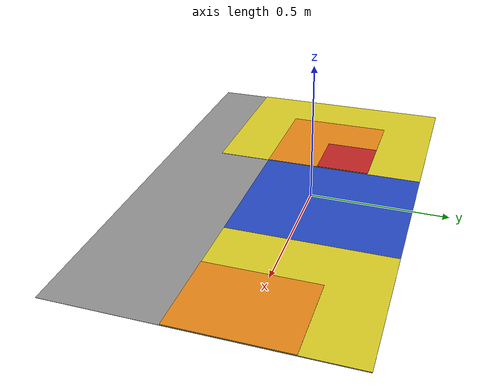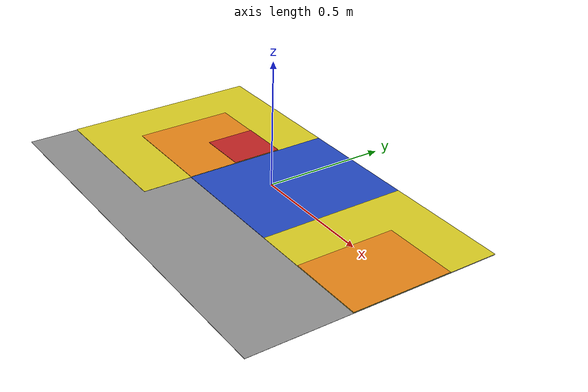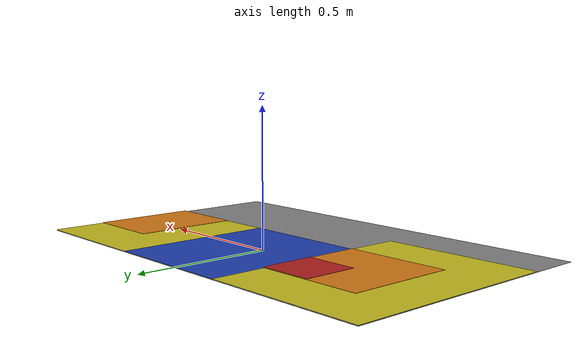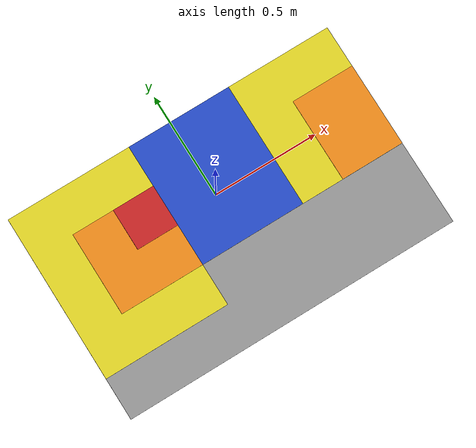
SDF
<?xml version='1.0'?>
<sdf version='1.6'>
  <model name='score_mattress_0'>
    <link name='link_0'>
      <pose frame=''>-0.007143 -0.128571 0.002 0 -0 0</pose>
      <inertial>
        <mass>1</mass>
        <inertia>
          <ixx>0.166667</ixx>
          <ixy>0</ixy>
          <ixz>0</ixz>
          <iyy>0.166667</iyy>
          <iyz>0</iyz>
          <izz>0.166667</izz>
        </inertia>
        <pose frame=''>0 0 0 0 -0 0</pose>
      </inertial>
      <self_collide>0</self_collide>
      <kinematic>0</kinematic>
      <sensor name='contact1' type='contact'>
        <always_on>1</always_on>
        <update_rate>10</update_rate>
        <contact>
          <collision>collision</collision>
          <topic>__default_topic__</topic>
        </contact>
        <plugin name='bumper1' filename='libgazebo_ros_bumper.so'>
          <alwaysOn>true</alwaysOn>
          <updateRate>0.0</updateRate>
          <bumperTopicName>/mattress/score0</bumperTopicName>
          <frameName>bumper1</frameName>
        </plugin>
      </sensor>
      <gravity>1</gravity>
      <visual name='visual'>
        <pose frame=''>0 0 0 0 -0 0</pose>
        <geometry>
          <box>
            <size>1.6 1 0.001</size>
          </box>
        </geometry>
        <material>
          <script>
            <uri>file://media/materials/scripts/gazebo.material</uri>
            <name>Gazebo/Grey</name>
          </script>
          <ambient>0.3 0.3 0.3 1</ambient>
          <diffuse>0.7 0.7 0.7 1</diffuse>
          <specular>0.01 0.01 0.01 1</specular>
          <emissive>0 0 0 1</emissive>
          <shader type='vertex'>
            <normal_map>__default__</normal_map>
          </shader>
        </material>
        <transparency>0</transparency>
        <cast_shadows>1</cast_shadows>
      </visual>
      <collision name='collision'>
        <laser_retro>0</laser_retro>
        <max_contacts>10</max_contacts>
        <pose frame=''>0 0 0 0 -0 0</pose>
        <geometry>
          <box>
            <size>1.6 1 0.001</size>
          </box>
        </geometry>
        <surface>
          <friction>
            <ode>
              <mu>1</mu>
              <mu2>1</mu2>
              <fdir1>0 0 0</fdir1>
              <slip1>0</slip1>
              <slip2>0</slip2>
            </ode>
            <torsional>
              <coefficient>1</coefficient>
              <patch_radius>0</patch_radius>
              <surface_radius>0</surface_radius>
              <use_patch_radius>1</use_patch_radius>
              <ode>
                <slip>0</slip>
              </ode>
            </torsional>
          </friction>
          <bounce>
            <restitution_coefficient>0</restitution_coefficient>
            <threshold>1e+06</threshold>
          </bounce>
          <contact>
            <collide_without_contact>0</collide_without_contact>
            <collide_without_contact_bitmask>1</collide_without_contact_bitmask>
            <collide_bitmask>1</collide_bitmask>
            <ode>
              <soft_cfm>0</soft_cfm>
              <soft_erp>0.2</soft_erp>
              <kp>1e+13</kp>
              <kd>1</kd>
              <max_vel>0.01</max_vel>
              <min_depth>0</min_depth>
            </ode>
            <bullet>
              <split_impulse>1</split_impulse>
              <split_impulse_penetration_threshold>-0.01</split_impulse_penetration_threshold>
              <soft_cfm>0</soft_cfm>
              <soft_erp>0.2</soft_erp>
              <kp>1e+13</kp>
              <kd>1</kd>
            </bullet>
          </contact>
        </surface>
      </collision>
    </link>
    <link name='link_0_clone'>
      <pose frame=''>0.542857 0.071429 0.004 0 -0 0</pose>
      <inertial>
        <mass>1</mass>
        <inertia>
          <ixx>0.166667</ixx>
          <ixy>0</ixy>
          <ixz>0</ixz>
          <iyy>0.166667</iyy>
          <iyz>0</iyz>
          <izz>0.166667</izz>
        </inertia>
        <pose frame=''>0 0 0 0 -0 0</pose>
      </inertial>
      <self_collide>0</self_collide>
      <kinematic>0</kinematic>
      <sensor name='contact2' type='contact'>
        <always_on>1</always_on>
        <update_rate>10</update_rate>
        <contact>
          <collision>collision</collision>
          <topic>__default_topic__</topic>
        </contact>
        <plugin name='bumper2' filename='libgazebo_ros_bumper.so'>
          <alwaysOn>true</alwaysOn>
          <updateRate>0.0</updateRate>
          <bumperTopicName>/mattress/score5</bumperTopicName>
          <frameName>bumper2</frameName>
        </plugin>
      </sensor>
      <gravity>1</gravity>
      <visual name='visual'>
        <pose frame=''>0 0 0 0 -0 0</pose>
        <geometry>
          <box>
            <size>0.5 0.6 0.001</size>
          </box>
        </geometry>
        <material>
          <script>
            <uri>file://media/materials/scripts/gazebo.material</uri>
            <name>Gazebo/Yellow</name>
          </script>
          <ambient>1 1 0 1</ambient>
          <diffuse>1 1 0 1</diffuse>
          <specular>0 0 0 0</specular>
          <emissive>0 0 0 1</emissive>
          <shader type='vertex'>
            <normal_map>__default__</normal_map>
          </shader>
        </material>
        <transparency>0</transparency>
        <cast_shadows>1</cast_shadows>
      </visual>
      <collision name='collision'>
        <laser_retro>0</laser_retro>
        <max_contacts>10</max_contacts>
        <pose frame=''>0 0 0 0 -0 0</pose>
        <geometry>
          <box>
            <size>0.5 0.6 0.001</size>
          </box>
        </geometry>
        <surface>
          <friction>
            <ode>
              <mu>1</mu>
              <mu2>1</mu2>
              <fdir1>0 0 0</fdir1>
              <slip1>0</slip1>
              <slip2>0</slip2>
            </ode>
            <torsional>
              <coefficient>1</coefficient>
              <patch_radius>0</patch_radius>
              <surface_radius>0</surface_radius>
              <use_patch_radius>1</use_patch_radius>
              <ode>
                <slip>0</slip>
              </ode>
            </torsional>
          </friction>
          <bounce>
            <restitution_coefficient>0</restitution_coefficient>
            <threshold>1e+06</threshold>
          </bounce>
          <contact>
            <collide_without_contact>0</collide_without_contact>
            <collide_without_contact_bitmask>1</collide_without_contact_bitmask>
            <collide_bitmask>1</collide_bitmask>
            <ode>
              <soft_cfm>0</soft_cfm>
              <soft_erp>0.2</soft_erp>
              <kp>1e+13</kp>
              <kd>1</kd>
              <max_vel>0.01</max_vel>
              <min_depth>0</min_depth>
            </ode>
            <bullet>
              <split_impulse>1</split_impulse>
              <split_impulse_penetration_threshold>-0.01</split_impulse_penetration_threshold>
              <soft_cfm>0</soft_cfm>
              <soft_erp>0.2</soft_erp>
              <kp>1e+13</kp>
              <kd>1</kd>
            </bullet>
          </contact>
        </surface>
      </collision>
    </link>
    <link name='link_0_clone_clone'>
      <pose frame=''>-0.507143 -0.028571 0.004 0 -0 0</pose>
      <inertial>
        <mass>1</mass>
        <inertia>
          <ixx>0.166667</ixx>
          <ixy>0</ixy>
          <ixz>0</ixz>
          <iyy>0.166667</iyy>
          <iyz>0</iyz>
          <izz>0.166667</izz>
        </inertia>
        <pose frame=''>0 0 0 0 -0 0</pose>
      </inertial>
      <self_collide>0</self_collide>
      <kinematic>0</kinematic>
      <sensor name='contact3' type='contact'>
        <always_on>1</always_on>
        <update_rate>10</update_rate>
        <contact>
          <collision>collision</collision>
          <topic>__default_topic__</topic>
        </contact>
        <plugin name='bumper3' filename='libgazebo_ros_bumper.so'>
          <alwaysOn>true</alwaysOn>
          <updateRate>0.0</updateRate>
          <bumperTopicName>/mattress/score5</bumperTopicName>
          <frameName>bumper3</frameName>
        </plugin>
      </sensor>
      <gravity>1</gravity>
      <visual name='visual'>
        <pose frame=''>0 0 0 0 -0 0</pose>
        <geometry>
          <box>
            <size>0.6 0.8 0.001</size>
          </box>
        </geometry>
        <material>
          <script>
            <uri>file://media/materials/scripts/gazebo.material</uri>
            <name>Gazebo/Yellow</name>
          </script>
          <ambient>1 1 0 1</ambient>
          <diffuse>1 1 0 1</diffuse>
          <specular>0 0 0 0</specular>
          <emissive>0 0 0 1</emissive>
          <shader type='vertex'>
            <normal_map>__default__</normal_map>
          </shader>
        </material>
        <transparency>0</transparency>
        <cast_shadows>1</cast_shadows>
      </visual>
      <collision name='collision'>
        <laser_retro>0</laser_retro>
        <max_contacts>10</max_contacts>
        <pose frame=''>0 0 0 0 -0 0</pose>
        <geometry>
          <box>
            <size>0.6 0.8 0.001</size>
          </box>
        </geometry>
        <surface>
          <friction>
            <ode>
              <mu>1</mu>
              <mu2>1</mu2>
              <fdir1>0 0 0</fdir1>
              <slip1>0</slip1>
              <slip2>0</slip2>
            </ode>
            <torsional>
              <coefficient>1</coefficient>
              <patch_radius>0</patch_radius>
              <surface_radius>0</surface_radius>
              <use_patch_radius>1</use_patch_radius>
              <ode>
                <slip>0</slip>
              </ode>
            </torsional>
          </friction>
          <bounce>
            <restitution_coefficient>0</restitution_coefficient>
            <threshold>1e+06</threshold>
          </bounce>
          <contact>
            <collide_without_contact>0</collide_without_contact>
            <collide_without_contact_bitmask>1</collide_without_contact_bitmask>
            <collide_bitmask>1</collide_bitmask>
            <ode>
              <soft_cfm>0</soft_cfm>
              <soft_erp>0.2</soft_erp>
              <kp>1e+13</kp>
              <kd>1</kd>
              <max_vel>0.01</max_vel>
              <min_depth>0</min_depth>
            </ode>
            <bullet>
              <split_impulse>1</split_impulse>
              <split_impulse_penetration_threshold>-0.01</split_impulse_penetration_threshold>
              <soft_cfm>0</soft_cfm>
              <soft_erp>0.2</soft_erp>
              <kp>1e+13</kp>
              <kd>1</kd>
            </bullet>
          </contact>
        </surface>
      </collision>
    </link>
    <link name='link_0_clone_clone_0'>
      <pose frame=''>0.042857 0.071429 0.004 0 -0 0</pose>
      <inertial>
        <mass>1</mass>
        <inertia>
          <ixx>0.166667</ixx>
          <ixy>0</ixy>
          <ixz>0</ixz>
          <iyy>0.166667</iyy>
          <iyz>0</iyz>
          <izz>0.166667</izz>
        </inertia>
        <pose frame=''>0 0 0 0 -0 0</pose>
      </inertial>
      <self_collide>0</self_collide>
      <kinematic>0</kinematic>
      <sensor name='contact4' type='contact'>
        <always_on>1</always_on>
        <update_rate>10</update_rate>
        <contact>
          <collision>collision</collision>
          <topic>__default_topic__</topic>
        </contact>
        <plugin name='bumper4' filename='libgazebo_ros_bumper.so'>
          <alwaysOn>true</alwaysOn>
          <updateRate>0.0</updateRate>
          <bumperTopicName>/mattress/score_10</bumperTopicName>
          <frameName>bumper4</frameName>
        </plugin>
      </sensor>
      <gravity>1</gravity>
      <visual name='visual'>
        <pose frame=''>0 0 0 0 -0 0</pose>
        <geometry>
          <box>
            <size>0.5 0.6 0.001</size>
          </box>
        </geometry>
        <material>
          <script>
            <uri>file://media/materials/scripts/gazebo.material</uri>
            <name>Gazebo/Blue</name>
          </script>
          <ambient>0 0 1 1</ambient>
          <diffuse>0 0 1 1</diffuse>
          <specular>0.1 0.1 0.1 1</specular>
          <emissive>0 0 0 1</emissive>
          <shader type='vertex'>
            <normal_map>__default__</normal_map>
          </shader>
        </material>
        <transparency>0</transparency>
        <cast_shadows>1</cast_shadows>
      </visual>
      <collision name='collision'>
        <laser_retro>0</laser_retro>
        <max_contacts>10</max_contacts>
        <pose frame=''>0 0 0 0 -0 0</pose>
        <geometry>
          <box>
            <size>0.5 0.6 0.001</size>
          </box>
        </geometry>
        <surface>
          <friction>
            <ode>
              <mu>1</mu>
              <mu2>1</mu2>
              <fdir1>0 0 0</fdir1>
              <slip1>0</slip1>
              <slip2>0</slip2>
            </ode>
            <torsional>
              <coefficient>1</coefficient>
              <patch_radius>0</patch_radius>
              <surface_radius>0</surface_radius>
              <use_patch_radius>1</use_patch_radius>
              <ode>
                <slip>0</slip>
              </ode>
            </torsional>
          </friction>
          <bounce>
            <restitution_coefficient>0</restitution_coefficient>
            <threshold>1e+06</threshold>
          </bounce>
          <contact>
            <collide_without_contact>0</collide_without_contact>
            <collide_without_contact_bitmask>1</collide_without_contact_bitmask>
            <collide_bitmask>1</collide_bitmask>
            <ode>
              <soft_cfm>0</soft_cfm>
              <soft_erp>0.2</soft_erp>
              <kp>1e+13</kp>
              <kd>1</kd>
              <max_vel>0.01</max_vel>
              <min_depth>0</min_depth>
            </ode>
            <bullet>
              <split_impulse>1</split_impulse>
              <split_impulse_penetration_threshold>-0.01</split_impulse_penetration_threshold>
              <soft_cfm>0</soft_cfm>
              <soft_erp>0.2</soft_erp>
              <kp>1e+13</kp>
              <kd>1</kd>
            </bullet>
          </contact>
        </surface>
      </collision>
    </link>
    <link name='link_0_clone_clone_1'>
      <pose frame=''>0.642857 -0.028571 0.006 0 -0 0</pose>
      <inertial>
        <mass>1</mass>
        <inertia>
          <ixx>0.166667</ixx>
          <ixy>0</ixy>
          <ixz>0</ixz>
          <iyy>0.166667</iyy>
          <iyz>0</iyz>
          <izz>0.166667</izz>
        </inertia>
        <pose frame=''>0 0 0 0 -0 0</pose>
      </inertial>
      <self_collide>0</self_collide>
      <kinematic>0</kinematic>
      <sensor name='contact5' type='contact'>
        <always_on>1</always_on>
        <update_rate>10</update_rate>
        <contact>
          <collision>collision</collision>
          <topic>__default_topic__</topic>
        </contact>
        <plugin name='bumper5' filename='libgazebo_ros_bumper.so'>
          <alwaysOn>true</alwaysOn>
          <updateRate>0.0</updateRate>
          <bumperTopicName>/mattress/score10</bumperTopicName>
          <frameName>bumper5</frameName>
        </plugin>
      </sensor>
      <gravity>1</gravity>
      <visual name='visual'>
        <pose frame=''>0 0 0 0 -0 0</pose>
        <geometry>
          <box>
            <size>0.3 0.4 0.001</size>
          </box>
        </geometry>
        <material>
          <script>
            <uri>file://media/materials/scripts/gazebo.material</uri>
            <name>Gazebo/Orange</name>
          </script>
          <ambient>1 0.509 0.047 1</ambient>
          <diffuse>1 0.509 0.047 1</diffuse>
          <specular>0.5 0.5 0.5 1</specular>
          <emissive>0 0 0 1</emissive>
          <shader type='vertex'>
            <normal_map>__default__</normal_map>
          </shader>
        </material>
        <transparency>0</transparency>
        <cast_shadows>1</cast_shadows>
      </visual>
      <collision name='collision'>
        <laser_retro>0</laser_retro>
        <max_contacts>10</max_contacts>
        <pose frame=''>0 0 0 0 -0 0</pose>
        <geometry>
          <box>
            <size>0.3 0.4 0.001</size>
          </box>
        </geometry>
        <surface>
          <friction>
            <ode>
              <mu>1</mu>
              <mu2>1</mu2>
              <fdir1>0 0 0</fdir1>
              <slip1>0</slip1>
              <slip2>0</slip2>
            </ode>
            <torsional>
              <coefficient>1</coefficient>
              <patch_radius>0</patch_radius>
              <surface_radius>0</surface_radius>
              <use_patch_radius>1</use_patch_radius>
              <ode>
                <slip>0</slip>
              </ode>
            </torsional>
          </friction>
          <bounce>
            <restitution_coefficient>0</restitution_coefficient>
            <threshold>1e+06</threshold>
          </bounce>
          <contact>
            <collide_without_contact>0</collide_without_contact>
            <collide_without_contact_bitmask>1</collide_without_contact_bitmask>
            <collide_bitmask>1</collide_bitmask>
            <ode>
              <soft_cfm>0</soft_cfm>
              <soft_erp>0.2</soft_erp>
              <kp>1e+13</kp>
              <kd>1</kd>
              <max_vel>0.01</max_vel>
              <min_depth>0</min_depth>
            </ode>
            <bullet>
              <split_impulse>1</split_impulse>
              <split_impulse_penetration_threshold>-0.01</split_impulse_penetration_threshold>
              <soft_cfm>0</soft_cfm>
              <soft_erp>0.2</soft_erp>
              <kp>1e+13</kp>
              <kd>1</kd>
            </bullet>
          </contact>
        </surface>
      </collision>
    </link>
    <link name='link_0_clone_clone_1_clone'>
      <pose frame=''>-0.407143 -0.028571 0.006 0 -0 0</pose>
      <inertial>
        <mass>1</mass>
        <inertia>
          <ixx>0.166667</ixx>
          <ixy>0</ixy>
          <ixz>0</ixz>
          <iyy>0.166667</iyy>
          <iyz>0</iyz>
          <izz>0.166667</izz>
        </inertia>
        <pose frame=''>0 0 0 0 -0 0</pose>
      </inertial>
      <self_collide>0</self_collide>
      <kinematic>0</kinematic>
      <sensor name='contact6' type='contact'>
        <always_on>1</always_on>
        <update_rate>10</update_rate>
        <contact>
          <collision>collision</collision>
          <topic>__default_topic__</topic>
        </contact>
        <plugin name='bumper6' filename='libgazebo_ros_bumper.so'>
          <alwaysOn>true</alwaysOn>
          <updateRate>0.0</updateRate>
          <bumperTopicName>/mattress/score10</bumperTopicName>
          <frameName>bumper6</frameName>
        </plugin>
      </sensor>
      <gravity>1</gravity>
      <visual name='visual'>
        <pose frame=''>0 0 0 0 -0 0</pose>
        <geometry>
          <box>
            <size>0.4 0.4 0.001</size>
          </box>
        </geometry>
        <material>
          <script>
            <uri>file://media/materials/scripts/gazebo.material</uri>
            <name>Gazebo/Orange</name>
          </script>
          <ambient>1 0.509 0.047 1</ambient>
          <diffuse>1 0.509 0.047 1</diffuse>
          <specular>0.5 0.5 0.5 1</specular>
          <emissive>0 0 0 1</emissive>
          <shader type='vertex'>
            <normal_map>__default__</normal_map>
          </shader>
        </material>
        <transparency>0</transparency>
        <cast_shadows>1</cast_shadows>
      </visual>
      <collision name='collision'>
        <laser_retro>0</laser_retro>
        <max_contacts>10</max_contacts>
        <pose frame=''>0 0 0 0 -0 0</pose>
        <geometry>
          <box>
            <size>0.4 0.4 0.001</size>
          </box>
        </geometry>
        <surface>
          <friction>
            <ode>
              <mu>1</mu>
              <mu2>1</mu2>
              <fdir1>0 0 0</fdir1>
              <slip1>0</slip1>
              <slip2>0</slip2>
            </ode>
            <torsional>
              <coefficient>1</coefficient>
              <patch_radius>0</patch_radius>
              <surface_radius>0</surface_radius>
              <use_patch_radius>1</use_patch_radius>
              <ode>
                <slip>0</slip>
              </ode>
            </torsional>
          </friction>
          <bounce>
            <restitution_coefficient>0</restitution_coefficient>
            <threshold>1e+06</threshold>
          </bounce>
          <contact>
            <collide_without_contact>0</collide_without_contact>
            <collide_without_contact_bitmask>1</collide_without_contact_bitmask>
            <collide_bitmask>1</collide_bitmask>
            <ode>
              <soft_cfm>0</soft_cfm>
              <soft_erp>0.2</soft_erp>
              <kp>1e+13</kp>
              <kd>1</kd>
              <max_vel>0.01</max_vel>
              <min_depth>0</min_depth>
            </ode>
            <bullet>
              <split_impulse>1</split_impulse>
              <split_impulse_penetration_threshold>-0.01</split_impulse_penetration_threshold>
              <soft_cfm>0</soft_cfm>
              <soft_erp>0.2</soft_erp>
              <kp>1e+13</kp>
              <kd>1</kd>
            </bullet>
          </contact>
        </surface>
      </collision>
    </link>
    <link name='link_0_clone_clone_1_clone_0'>
      <pose frame=''>-0.307143 0.071429 0.008 0 -0 0</pose>
      <inertial>
        <mass>1</mass>
        <inertia>
          <ixx>0.166667</ixx>
          <ixy>0</ixy>
          <ixz>0</ixz>
          <iyy>0.166667</iyy>
          <iyz>0</iyz>
          <izz>0.166667</izz>
        </inertia>
        <pose frame=''>0 0 0 0 -0 0</pose>
      </inertial>
      <self_collide>0</self_collide>
      <kinematic>0</kinematic>
      <sensor name='contact7' type='contact'>
        <always_on>1</always_on>
        <update_rate>10</update_rate>
        <contact>
          <collision>collision</collision>
          <topic>__default_topic__</topic>
        </contact>
        <plugin name='bumper7' filename='libgazebo_ros_bumper.so'>
          <alwaysOn>true</alwaysOn>
          <updateRate>0.0</updateRate>
          <bumperTopicName>/mattress/score100</bumperTopicName>
          <frameName>bumper7</frameName>
        </plugin>
      </sensor>
      <gravity>1</gravity>
      <visual name='visual'>
        <pose frame=''>0 0 0 0 -0 0</pose>
        <geometry>
          <box>
            <size>0.2 0.2 0.001</size>
          </box>
        </geometry>
        <material>
          <script>
            <uri>file://media/materials/scripts/gazebo.material</uri>
            <name>Gazebo/Red</name>
          </script>
          <ambient>1 0 0 1</ambient>
          <diffuse>1 0 0 1</diffuse>
          <specular>0.1 0.1 0.1 1</specular>
          <emissive>0 0 0 1</emissive>
          <shader type='vertex'>
            <normal_map>__default__</normal_map>
          </shader>
        </material>
        <transparency>0</transparency>
        <cast_shadows>1</cast_shadows>
      </visual>
      <collision name='collision'>
        <laser_retro>0</laser_retro>
        <max_contacts>10</max_contacts>
        <pose frame=''>0 0 0 0 -0 0</pose>
        <geometry>
          <box>
            <size>0.2 0.2 0.001</size>
          </box>
        </geometry>
        <surface>
          <friction>
            <ode>
              <mu>1</mu>
              <mu2>1</mu2>
              <fdir1>0 0 0</fdir1>
              <slip1>0</slip1>
              <slip2>0</slip2>
            </ode>
            <torsional>
              <coefficient>1</coefficient>
              <patch_radius>0</patch_radius>
              <surface_radius>0</surface_radius>
              <use_patch_radius>1</use_patch_radius>
              <ode>
                <slip>0</slip>
              </ode>
            </torsional>
          </friction>
          <bounce>
            <restitution_coefficient>0</restitution_coefficient>
            <threshold>1e+06</threshold>
          </bounce>
          <contact>
            <collide_without_contact>0</collide_without_contact>
            <collide_without_contact_bitmask>1</collide_without_contact_bitmask>
            <collide_bitmask>1</collide_bitmask>
            <ode>
              <soft_cfm>0</soft_cfm>
              <soft_erp>0.2</soft_erp>
              <kp>1e+13</kp>
              <kd>1</kd>
              <max_vel>0.01</max_vel>
              <min_depth>0</min_depth>
            </ode>
            <bullet>
              <split_impulse>1</split_impulse>
              <split_impulse_penetration_threshold>-0.01</split_impulse_penetration_threshold>
              <soft_cfm>0</soft_cfm>
              <soft_erp>0.2</soft_erp>
              <kp>1e+13</kp>
              <kd>1</kd>
            </bullet>
          </contact>
        </surface>
      </collision>
    </link>
    <joint name='link_0_JOINT_0' type='fixed'>
      <parent>link_0</parent>
      <child>link_0_clone</child>
      <pose frame=''>0 0 0 0 -0 0</pose>
      <physics>
        <ode>
          <limit>
            <cfm>0</cfm>
            <erp>0.2</erp>
          </limit>
          <suspension>
            <cfm>0</cfm>
            <erp>0.2</erp>
          </suspension>
        </ode>
      </physics>
    </joint>
    <joint name='link_0_JOINT_1' type='fixed'>
      <parent>link_0</parent>
      <child>link_0_clone_clone_0</child>
      <pose frame=''>0 0 0 0 -0 0</pose>
      <physics>
        <ode>
          <limit>
            <cfm>0</cfm>
            <erp>0.2</erp>
          </limit>
          <suspension>
            <cfm>0</cfm>
            <erp>0.2</erp>
          </suspension>
        </ode>
      </physics>
    </joint>
    <joint name='link_0_JOINT_2' type='fixed'>
      <parent>link_0</parent>
      <child>link_0_clone_clone</child>
      <pose frame=''>0 0 0 0 -0 0</pose>
      <physics>
        <ode>
          <limit>
            <cfm>0</cfm>
            <erp>0.2</erp>
          </limit>
          <suspension>
            <cfm>0</cfm>
            <erp>0.2</erp>
          </suspension>
        </ode>
      </physics>
    </joint>
    <joint name='link_0_clone_JOINT_3' type='revolute'>
      <parent>link_0_clone</parent>
      <child>link_0_clone_clone_1</child>
      <pose frame=''>0 0 0 0 -0.01 0</pose>
      <axis>
        <xyz>1 0 0</xyz>
        <use_parent_model_frame>0</use_parent_model_frame>
        <limit>
          <lower>-1.79769e+308</lower>
          <upper>1.79769e+308</upper>
          <effort>-1</effort>
          <velocity>-1</velocity>
        </limit>
        <dynamics>
          <spring_reference>0</spring_reference>
          <spring_stiffness>0</spring_stiffness>
          <damping>0</damping>
          <friction>0</friction>
        </dynamics>
      </axis>
      <physics>
        <ode>
          <limit>
            <cfm>0</cfm>
            <erp>0.2</erp>
          </limit>
          <suspension>
            <cfm>0</cfm>
            <erp>0.2</erp>
          </suspension>
        </ode>
      </physics>
    </joint>
    <joint name='link_0_clone_clone_1_clone_JOINT_5' type='fixed'>
      <parent>link_0_clone_clone_1_clone</parent>
      <child>link_0_clone_clone_1_clone_0</child>
      <pose frame=''>0 0 0 0 -0 0</pose>
      <physics>
        <ode>
          <limit>
            <cfm>0</cfm>
            <erp>0.2</erp>
          </limit>
          <suspension>
            <cfm>0</cfm>
            <erp>0.2</erp>
          </suspension>
        </ode>
      </physics>
    </joint>
    <joint name='link_0_clone_clone_JOINT_4' type='fixed'>
      <parent>link_0_clone_clone</parent>
      <child>link_0_clone_clone_1_clone</child>
      <pose frame=''>0 0 0 0 -0 0</pose>
      <physics>
        <ode>
          <limit>
            <cfm>0</cfm>
            <erp>0.2</erp>
          </limit>
          <suspension>
            <cfm>0</cfm>
            <erp>0.2</erp>
          </suspension>
        </ode>
      </physics>
    </joint>
    <static>1</static>
    <allow_auto_disable>1</allow_auto_disable>
  </model>
</sdf>
